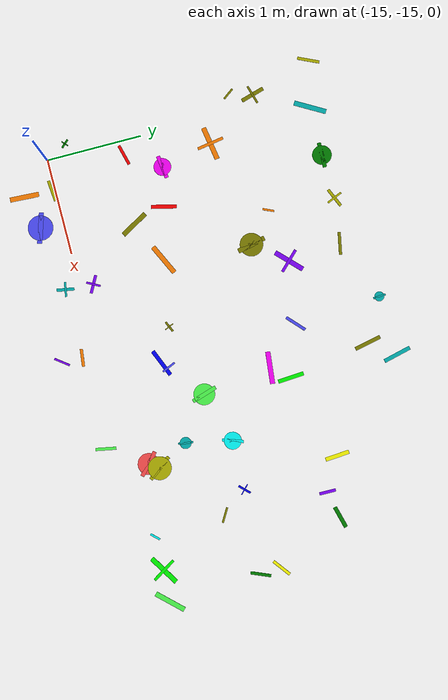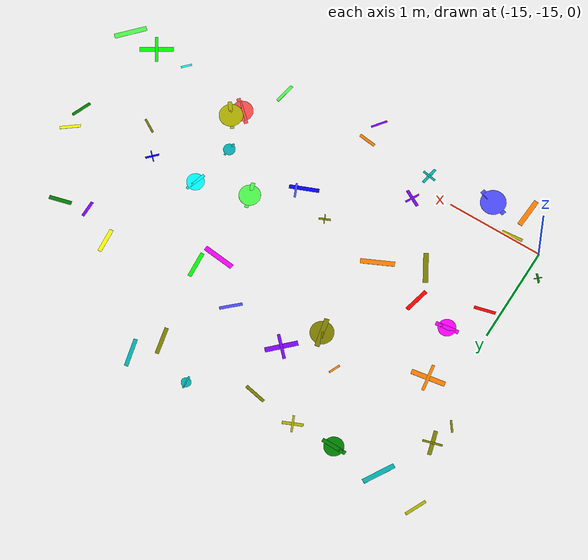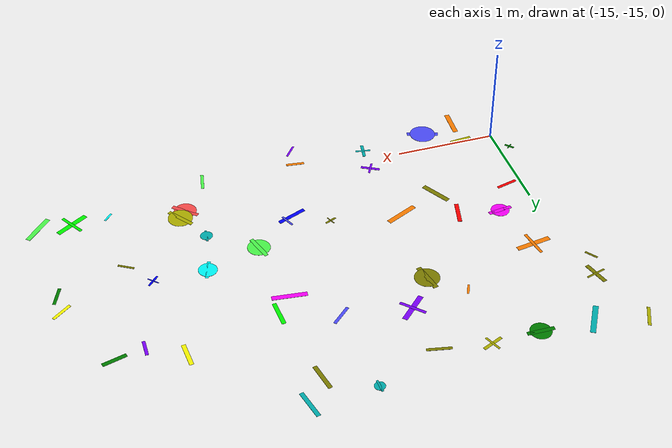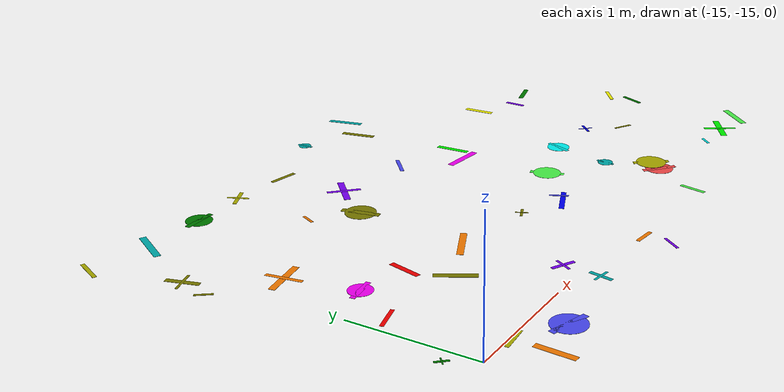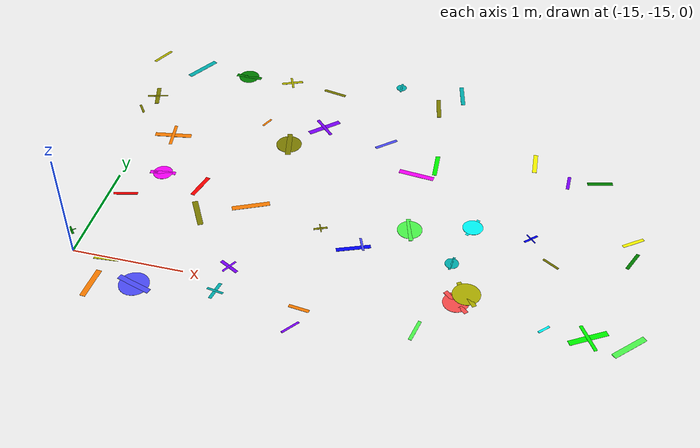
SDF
<sdf version="1.6">
 <world name="default">
  <model name="letter_J_12">
   <static>true</static>
   <pose>-14.68 -15.03 0.010 0 0 3.229</pose>
   <link name="link">
    <visual name="visual">
     <geometry><box><size>0.22 0.03 0.002</size></box></geometry>
     <material>
      <ambient>0.7 0.7 0.0 1</ambient>
      <diffuse>0.7 0.7 0.0 1</diffuse>
      <specular>0.1 0.1 0.1 1</specular>
     </material>
    </visual>
   </link>
  </model>
  <model name="letter_H_13">
   <static>true</static>
   <pose>-15.12 -14.78 0.005 0 0 2.308</pose>
   <link name="link">
    <visual name="visual">
     <geometry><box><size>0.10 0.02 0.002</size></box></geometry>
     <material>
      <ambient>0.0 0.5 0.0 1</ambient>
      <diffuse>0.0 0.5 0.0 1</diffuse>
      <specular>0.1 0.1 0.1 1</specular>
     </material>
    </visual>
    <visual name="visual2">
     <pose>0 0 0.001 0 0 1.57</pose>
     <geometry><box><size>0.08 0.01 0.001</size></box></geometry>
     <material><ambient>0.0 0.5 0.0 1</ambient><diffuse>0.0 0.5 0.0 1</diffuse></material>
    </visual>
   </link>
  </model>
  <model name="letter_N_14">
   <static>true</static>
   <pose>-14.69 -15.32 0.008 0 0 4.657</pose>
   <link name="link">
    <visual name="visual">
     <geometry><box><size>0.30 0.05 0.002</size></box></geometry>
     <material>
      <ambient>1.0 0.5 0.0 1</ambient>
      <diffuse>1.0 0.5 0.0 1</diffuse>
      <specular>0.1 0.1 0.1 1</specular>
     </material>
    </visual>
   </link>
  </model>
  <model name="letter_C_15">
   <static>true</static>
   <pose>-14.63 -13.87 0.008 0 0 3.273</pose>
   <link name="link">
    <visual name="visual">
     <geometry><box><size>0.24 0.04 0.002</size></box></geometry>
     <material>
      <ambient>1.0 0.0 1.0 1</ambient>
      <diffuse>1.0 0.0 1.0 1</diffuse>
      <specular>0.1 0.1 0.1 1</specular>
     </material>
    </visual>
    <visual name="visual2">
     <geometry><cylinder><radius>0.09</radius><length>0.002</length></cylinder></geometry>
     <material><ambient>1.0 0.0 1.0 1</ambient><diffuse>1.0 0.0 1.0 1</diffuse></material>
    </visual>
   </link>
  </model>
  <model name="letter_X_16">
   <static>true</static>
   <pose>-14.85 -14.22 0.008 0 0 3.390</pose>
   <link name="link">
    <visual name="visual">
     <geometry><box><size>0.22 0.03 0.002</size></box></geometry>
     <material>
      <ambient>1.0 0.0 0.0 1</ambient>
      <diffuse>1.0 0.0 0.0 1</diffuse>
      <specular>0.1 0.1 0.1 1</specular>
     </material>
    </visual>
   </link>
  </model>
  <model name="letter_I_17">
   <static>true</static>
   <pose>-15.12 -12.78 0.003 0 0 1.850</pose>
   <link name="link">
    <visual name="visual">
     <geometry><box><size>0.25 0.04 0.002</size></box></geometry>
     <material>
      <ambient>0.5 0.5 0.0 1</ambient>
      <diffuse>0.5 0.5 0.0 1</diffuse>
      <specular>0.1 0.1 0.1 1</specular>
     </material>
    </visual>
    <visual name="visual2">
     <pose>0 0 0.001 0 0 1.57</pose>
     <geometry><box><size>0.20 0.02 0.001</size></box></geometry>
     <material><ambient>0.5 0.5 0.0 1</ambient><diffuse>0.5 0.5 0.0 1</diffuse></material>
    </visual>
   </link>
  </model>
  <model name="letter_H_18">
   <static>true</static>
   <pose>-14.74 -13.33 0.005 0 0 0.158</pose>
   <link name="link">
    <visual name="visual">
     <geometry><box><size>0.35 0.05 0.002</size></box></geometry>
     <material>
      <ambient>1.0 0.5 0.0 1</ambient>
      <diffuse>1.0 0.5 0.0 1</diffuse>
      <specular>0.1 0.1 0.1 1</specular>
     </material>
    </visual>
    <visual name="visual2">
     <pose>0 0 0.001 0 0 1.57</pose>
     <geometry><box><size>0.28 0.03 0.001</size></box></geometry>
     <material><ambient>1.0 0.5 0.0 1</ambient><diffuse>1.0 0.5 0.0 1</diffuse></material>
    </visual>
   </link>
  </model>
  <model name="letter_V_19">
   <static>true</static>
   <pose>-15.19 -13.02 0.007 0 0 2.205</pose>
   <link name="link">
    <visual name="visual">
     <geometry><box><size>0.13 0.02 0.002</size></box></geometry>
     <material>
      <ambient>0.5 0.5 0.0 1</ambient>
      <diffuse>0.5 0.5 0.0 1</diffuse>
      <specular>0.1 0.1 0.1 1</specular>
     </material>
    </visual>
   </link>
  </model>
  <model name="letter_X_20">
   <static>true</static>
   <pose>-14.84 -12.24 0.009 0 0 1.045</pose>
   <link name="link">
    <visual name="visual">
     <geometry><box><size>0.34 0.05 0.002</size></box></geometry>
     <material>
      <ambient>0.0 0.7 0.7 1</ambient>
      <diffuse>0.0 0.7 0.7 1</diffuse>
      <specular>0.1 0.1 0.1 1</specular>
     </material>
    </visual>
   </link>
  </model>
  <model name="letter_W_22">
   <static>true</static>
   <pose>-15.32 -12.13 0.008 0 0 1.135</pose>
   <link name="link">
    <visual name="visual">
     <geometry><box><size>0.23 0.03 0.002</size></box></geometry>
     <material>
      <ambient>0.7 0.7 0.0 1</ambient>
      <diffuse>0.7 0.7 0.0 1</diffuse>
      <specular>0.1 0.1 0.1 1</specular>
     </material>
    </visual>
   </link>
  </model>
  <model name="letter_L_92">
   <static>true</static>
   <pose>-13.64 -14.86 0.009 0 0 5.786</pose>
   <link name="link">
    <visual name="visual">
     <geometry><box><size>0.19 0.03 0.002</size></box></geometry>
     <material>
      <ambient>0.5 0.0 1.0 1</ambient>
      <diffuse>0.5 0.0 1.0 1</diffuse>
      <specular>0.1 0.1 0.1 1</specular>
     </material>
    </visual>
    <visual name="visual2">
     <pose>0 0 0.001 0 0 1.57</pose>
     <geometry><box><size>0.15 0.02 0.001</size></box></geometry>
     <material><ambient>0.5 0.0 1.0 1</ambient><diffuse>0.5 0.0 1.0 1</diffuse></material>
    </visual>
   </link>
  </model>
  <model name="letter_G_93">
   <static>true</static>
   <pose>-14.34 -15.24 0.006 0 0 5.975</pose>
   <link name="link">
    <visual name="visual">
     <geometry><box><size>0.32 0.05 0.002</size></box></geometry>
     <material>
      <ambient>0.3 0.3 1.0 1</ambient>
      <diffuse>0.3 0.3 1.0 1</diffuse>
      <specular>0.1 0.1 0.1 1</specular>
     </material>
    </visual>
    <visual name="visual2">
     <geometry><cylinder><radius>0.13</radius><length>0.002</length></cylinder></geometry>
     <material><ambient>0.3 0.3 1.0 1</ambient><diffuse>0.3 0.3 1.0 1</diffuse></material>
    </visual>
   </link>
  </model>
  <model name="letter_A_94">
   <static>true</static>
   <pose>-13.66 -15.15 0.010 0 0 1.398</pose>
   <link name="link">
    <visual name="visual">
     <geometry><box><size>0.18 0.03 0.002</size></box></geometry>
     <material>
      <ambient>0.0 0.7 0.7 1</ambient>
      <diffuse>0.0 0.7 0.7 1</diffuse>
      <specular>0.1 0.1 0.1 1</specular>
     </material>
    </visual>
    <visual name="visual2">
     <pose>0 0 0.001 0 0 1.57</pose>
     <geometry><box><size>0.15 0.02 0.001</size></box></geometry>
     <material><ambient>0.0 0.7 0.7 1</ambient><diffuse>0.0 0.7 0.7 1</diffuse></material>
    </visual>
   </link>
  </model>
  <model name="letter_V_95">
   <static>true</static>
   <pose>-13.70 -14.10 0.006 0 0 3.581</pose>
   <link name="link">
    <visual name="visual">
     <geometry><box><size>0.34 0.05 0.002</size></box></geometry>
     <material>
      <ambient>1.0 0.5 0.0 1</ambient>
      <diffuse>1.0 0.5 0.0 1</diffuse>
      <specular>0.1 0.1 0.1 1</specular>
     </material>
    </visual>
   </link>
  </model>
  <model name="letter_S_96">
   <static>true</static>
   <pose>-14.13 -14.30 0.003 0 0 5.231</pose>
   <link name="link">
    <visual name="visual">
     <geometry><box><size>0.31 0.05 0.002</size></box></geometry>
     <material>
      <ambient>0.5 0.5 0.0 1</ambient>
      <diffuse>0.5 0.5 0.0 1</diffuse>
      <specular>0.1 0.1 0.1 1</specular>
     </material>
    </visual>
   </link>
  </model>
  <model name="letter_P_97">
   <static>true</static>
   <pose>-14.23 -13.96 0.004 0 0 4.477</pose>
   <link name="link">
    <visual name="visual">
     <geometry><box><size>0.26 0.04 0.002</size></box></geometry>
     <material>
      <ambient>1.0 0.0 0.0 1</ambient>
      <diffuse>1.0 0.0 0.0 1</diffuse>
      <specular>0.1 0.1 0.1 1</specular>
     </material>
    </visual>
   </link>
  </model>
  <model name="letter_G_98">
   <static>true</static>
   <pose>-13.62 -13.19 0.006 0 0 1.784</pose>
   <link name="link">
    <visual name="visual">
     <geometry><box><size>0.30 0.05 0.002</size></box></geometry>
     <material>
      <ambient>0.5 0.5 0.0 1</ambient>
      <diffuse>0.5 0.5 0.0 1</diffuse>
      <specular>0.1 0.1 0.1 1</specular>
     </material>
    </visual>
    <visual name="visual2">
     <geometry><cylinder><radius>0.12</radius><length>0.002</length></cylinder></geometry>
     <material><ambient>0.5 0.5 0.0 1</ambient><diffuse>0.5 0.5 0.0 1</diffuse></material>
    </visual>
   </link>
  </model>
  <model name="letter_J_99">
   <static>true</static>
   <pose>-13.92 -12.93 0.011 0 0 4.288</pose>
   <link name="link">
    <visual name="visual">
     <geometry><box><size>0.12 0.02 0.002</size></box></geometry>
     <material>
      <ambient>1.0 0.5 0.0 1</ambient>
      <diffuse>1.0 0.5 0.0 1</diffuse>
      <specular>0.1 0.1 0.1 1</specular>
     </material>
    </visual>
   </link>
  </model>
  <model name="letter_I_100">
   <static>true</static>
   <pose>-13.87 -12.24 0.005 0 0 3.550</pose>
   <link name="link">
    <visual name="visual">
     <geometry><box><size>0.21 0.03 0.002</size></box></geometry>
     <material>
      <ambient>0.7 0.7 0.0 1</ambient>
      <diffuse>0.7 0.7 0.0 1</diffuse>
      <specular>0.1 0.1 0.1 1</specular>
     </material>
    </visual>
    <visual name="visual2">
     <pose>0 0 0.001 0 0 1.57</pose>
     <geometry><box><size>0.17 0.02 0.001</size></box></geometry>
     <material><ambient>0.7 0.7 0.0 1</ambient><diffuse>0.7 0.7 0.0 1</diffuse></material>
    </visual>
   </link>
  </model>
  <model name="letter_Q_101">
   <static>true</static>
   <pose>-14.33 -12.25 0.007 0 0 6.266</pose>
   <link name="link">
    <visual name="visual">
     <geometry><box><size>0.26 0.04 0.002</size></box></geometry>
     <material>
      <ambient>0.0 0.5 0.0 1</ambient>
      <diffuse>0.0 0.5 0.0 1</diffuse>
      <specular>0.1 0.1 0.1 1</specular>
     </material>
    </visual>
    <visual name="visual2">
     <geometry><cylinder><radius>0.10</radius><length>0.002</length></cylinder></geometry>
     <material><ambient>0.0 0.5 0.0 1</ambient><diffuse>0.0 0.5 0.0 1</diffuse></material>
    </visual>
   </link>
  </model>
  <model name="letter_S_168">
   <static>true</static>
   <pose>-12.95 -15.37 0.006 0 0 0.918</pose>
   <link name="link">
    <visual name="visual">
     <geometry><box><size>0.17 0.02 0.002</size></box></geometry>
     <material>
      <ambient>0.5 0.0 1.0 1</ambient>
      <diffuse>0.5 0.0 1.0 1</diffuse>
      <specular>0.1 0.1 0.1 1</specular>
     </material>
    </visual>
   </link>
  </model>
  <model name="letter_J_169">
   <static>true</static>
   <pose>-12.94 -15.16 0.003 0 0 3.016</pose>
   <link name="link">
    <visual name="visual">
     <geometry><box><size>0.18 0.03 0.002</size></box></geometry>
     <material>
      <ambient>1.0 0.5 0.0 1</ambient>
      <diffuse>1.0 0.5 0.0 1</diffuse>
      <specular>0.1 0.1 0.1 1</specular>
     </material>
    </visual>
   </link>
  </model>
  <model name="letter_R_170">
   <static>true</static>
   <pose>-12.62 -14.33 0.012 0 0 1.975</pose>
   <link name="link">
    <visual name="visual">
     <geometry><box><size>0.15 0.02 0.002</size></box></geometry>
     <material>
      <ambient>0.3 0.3 1.0 1</ambient>
      <diffuse>0.3 0.3 1.0 1</diffuse>
      <specular>0.1 0.1 0.1 1</specular>
     </material>
    </visual>
   </link>
  </model>
  <model name="letter_I_171">
   <static>true</static>
   <pose>-13.02 -14.22 0.004 0 0 0.409</pose>
   <link name="link">
    <visual name="visual">
     <geometry><box><size>0.12 0.02 0.002</size></box></geometry>
     <material>
      <ambient>0.5 0.5 0.0 1</ambient>
      <diffuse>0.5 0.5 0.0 1</diffuse>
      <specular>0.1 0.1 0.1 1</specular>
     </material>
    </visual>
    <visual name="visual2">
     <pose>0 0 0.001 0 0 1.57</pose>
     <geometry><box><size>0.10 0.01 0.001</size></box></geometry>
     <material><ambient>0.5 0.5 0.0 1</ambient><diffuse>0.5 0.5 0.0 1</diffuse></material>
    </visual>
   </link>
  </model>
  <model name="letter_D_172">
   <static>true</static>
   <pose>-12.68 -14.39 0.008 0 0 0.388</pose>
   <link name="link">
    <visual name="visual">
     <geometry><box><size>0.30 0.04 0.002</size></box></geometry>
     <material>
      <ambient>0.0 0.0 1.0 1</ambient>
      <diffuse>0.0 0.0 1.0 1</diffuse>
      <specular>0.1 0.1 0.1 1</specular>
     </material>
    </visual>
   </link>
  </model>
  <model name="letter_H_173">
   <static>true</static>
   <pose>-13.36 -12.86 0.006 0 0 0.772</pose>
   <link name="link">
    <visual name="visual">
     <geometry><box><size>0.33 0.05 0.002</size></box></geometry>
     <material>
      <ambient>0.5 0.0 1.0 1</ambient>
      <diffuse>0.5 0.0 1.0 1</diffuse>
      <specular>0.1 0.1 0.1 1</specular>
     </material>
    </visual>
    <visual name="visual2">
     <pose>0 0 0.001 0 0 1.57</pose>
     <geometry><box><size>0.26 0.03 0.001</size></box></geometry>
     <material><ambient>0.5 0.0 1.0 1</ambient><diffuse>0.5 0.0 1.0 1</diffuse></material>
    </visual>
   </link>
  </model>
  <model name="letter_M_174">
   <static>true</static>
   <pose>-12.72 -12.96 0.007 0 0 0.742</pose>
   <link name="link">
    <visual name="visual">
     <geometry><box><size>0.23 0.03 0.002</size></box></geometry>
     <material>
      <ambient>0.3 0.3 1.0 1</ambient>
      <diffuse>0.3 0.3 1.0 1</diffuse>
      <specular>0.1 0.1 0.1 1</specular>
     </material>
    </visual>
   </link>
  </model>
  <model name="letter_P_175">
   <static>true</static>
   <pose>-13.40 -12.31 0.013 0 0 2.941</pose>
   <link name="link">
    <visual name="visual">
     <geometry><box><size>0.23 0.03 0.002</size></box></geometry>
     <material>
      <ambient>0.5 0.5 0.0 1</ambient>
      <diffuse>0.5 0.5 0.0 1</diffuse>
      <specular>0.1 0.1 0.1 1</specular>
     </material>
    </visual>
   </link>
  </model>
  <model name="letter_Q_176">
   <static>true</static>
   <pose>-12.77 -12.06 0.013 0 0 1.626</pose>
   <link name="link">
    <visual name="visual">
     <geometry><box><size>0.13 0.02 0.002</size></box></geometry>
     <material>
      <ambient>0.0 0.7 0.7 1</ambient>
      <diffuse>0.0 0.7 0.7 1</diffuse>
      <specular>0.1 0.1 0.1 1</specular>
     </material>
    </visual>
    <visual name="visual2">
     <geometry><cylinder><radius>0.05</radius><length>0.002</length></cylinder></geometry>
     <material><ambient>0.0 0.7 0.7 1</ambient><diffuse>0.0 0.7 0.7 1</diffuse></material>
    </visual>
   </link>
  </model>
  <model name="letter_V_244">
   <static>true</static>
   <pose>-11.98 -15.16 0.008 0 0 4.519</pose>
   <link name="link">
    <visual name="visual">
     <geometry><box><size>0.21 0.03 0.002</size></box></geometry>
     <material>
      <ambient>0.3 1.0 0.3 1</ambient>
      <diffuse>0.3 1.0 0.3 1</diffuse>
      <specular>0.1 0.1 0.1 1</specular>
     </material>
    </visual>
   </link>
  </model>
  <model name="letter_G_245">
   <static>true</static>
   <pose>-11.65 -14.68 0.011 0 0 2.213</pose>
   <link name="link">
    <visual name="visual">
     <geometry><box><size>0.29 0.04 0.002</size></box></geometry>
     <material>
      <ambient>0.7 0.7 0.0 1</ambient>
      <diffuse>0.7 0.7 0.0 1</diffuse>
      <specular>0.1 0.1 0.1 1</specular>
     </material>
    </visual>
    <visual name="visual2">
     <geometry><cylinder><radius>0.12</radius><length>0.002</length></cylinder></geometry>
     <material><ambient>0.7 0.7 0.0 1</ambient><diffuse>0.7 0.7 0.0 1</diffuse></material>
    </visual>
   </link>
  </model>
  <model name="letter_Q_246">
   <static>true</static>
   <pose>-11.72 -14.78 0.003 0 0 2.409</pose>
   <link name="link">
    <visual name="visual">
     <geometry><box><size>0.28 0.04 0.002</size></box></geometry>
     <material>
      <ambient>1.0 0.3 0.3 1</ambient>
      <diffuse>1.0 0.3 0.3 1</diffuse>
      <specular>0.1 0.1 0.1 1</specular>
     </material>
    </visual>
    <visual name="visual2">
     <geometry><cylinder><radius>0.11</radius><length>0.002</length></cylinder></geometry>
     <material><ambient>1.0 0.3 0.3 1</ambient><diffuse>1.0 0.3 0.3 1</diffuse></material>
    </visual>
   </link>
  </model>
  <model name="letter_O_247">
   <static>true</static>
   <pose>-12.26 -14.05 0.007 0 0 1.871</pose>
   <link name="link">
    <visual name="visual">
     <geometry><box><size>0.27 0.04 0.002</size></box></geometry>
     <material>
      <ambient>0.3 1.0 0.3 1</ambient>
      <diffuse>0.3 1.0 0.3 1</diffuse>
      <specular>0.1 0.1 0.1 1</specular>
     </material>
    </visual>
    <visual name="visual2">
     <geometry><cylinder><radius>0.11</radius><length>0.002</length></cylinder></geometry>
     <material><ambient>0.3 1.0 0.3 1</ambient><diffuse>0.3 1.0 0.3 1</diffuse></material>
    </visual>
   </link>
  </model>
  <model name="letter_C_248">
   <static>true</static>
   <pose>-11.83 -14.36 0.007 0 0 1.444</pose>
   <link name="link">
    <visual name="visual">
     <geometry><box><size>0.15 0.02 0.002</size></box></geometry>
     <material>
      <ambient>0.0 0.7 0.7 1</ambient>
      <diffuse>0.0 0.7 0.7 1</diffuse>
      <specular>0.1 0.1 0.1 1</specular>
     </material>
    </visual>
    <visual name="visual2">
     <geometry><cylinder><radius>0.06</radius><length>0.002</length></cylinder></geometry>
     <material><ambient>0.0 0.7 0.7 1</ambient><diffuse>0.0 0.7 0.7 1</diffuse></material>
    </visual>
   </link>
  </model>
  <model name="letter_O_249">
   <static>true</static>
   <pose>-11.73 -13.89 0.010 0 0 1.238</pose>
   <link name="link">
    <visual name="visual">
     <geometry><box><size>0.22 0.03 0.002</size></box></geometry>
     <material>
      <ambient>0.0 1.0 1.0 1</ambient>
      <diffuse>0.0 1.0 1.0 1</diffuse>
      <specular>0.1 0.1 0.1 1</specular>
     </material>
    </visual>
    <visual name="visual2">
     <geometry><cylinder><radius>0.09</radius><length>0.002</length></cylinder></geometry>
     <material><ambient>0.0 1.0 1.0 1</ambient><diffuse>0.0 1.0 1.0 1</diffuse></material>
    </visual>
   </link>
  </model>
  <model name="letter_V_250">
   <static>true</static>
   <pose>-12.35 -13.33 0.011 0 0 6.174</pose>
   <link name="link">
    <visual name="visual">
     <geometry><box><size>0.33 0.05 0.002</size></box></geometry>
     <material>
      <ambient>1.0 0.0 1.0 1</ambient>
      <diffuse>1.0 0.0 1.0 1</diffuse>
      <specular>0.1 0.1 0.1 1</specular>
     </material>
    </visual>
   </link>
  </model>
  <model name="letter_J_251">
   <static>true</static>
   <pose>-12.20 -13.15 0.004 0 0 4.776</pose>
   <link name="link">
    <visual name="visual">
     <geometry><box><size>0.27 0.04 0.002</size></box></geometry>
     <material>
      <ambient>0.0 1.0 0.0 1</ambient>
      <diffuse>0.0 1.0 0.0 1</diffuse>
      <specular>0.1 0.1 0.1 1</specular>
     </material>
    </visual>
   </link>
  </model>
  <model name="letter_S_252">
   <static>true</static>
   <pose>-12.15 -12.04 0.012 0 0 1.804</pose>
   <link name="link">
    <visual name="visual">
     <geometry><box><size>0.29 0.04 0.002</size></box></geometry>
     <material>
      <ambient>0.0 0.7 0.7 1</ambient>
      <diffuse>0.0 0.7 0.7 1</diffuse>
      <specular>0.1 0.1 0.1 1</specular>
     </material>
    </visual>
   </link>
  </model>
  <model name="letter_S_253">
   <static>true</static>
   <pose>-12.34 -12.30 0.012 0 0 1.778</pose>
   <link name="link">
    <visual name="visual">
     <geometry><box><size>0.28 0.04 0.002</size></box></geometry>
     <material>
      <ambient>0.5 0.5 0.0 1</ambient>
      <diffuse>0.5 0.5 0.0 1</diffuse>
      <specular>0.1 0.1 0.1 1</specular>
     </material>
    </visual>
   </link>
  </model>
  <model name="letter_P_318">
   <static>true</static>
   <pose>-10.99 -14.90 0.012 0 0 0.812</pose>
   <link name="link">
    <visual name="visual">
     <geometry><box><size>0.11 0.02 0.002</size></box></geometry>
     <material>
      <ambient>0.0 1.0 1.0 1</ambient>
      <diffuse>0.0 1.0 1.0 1</diffuse>
      <specular>0.1 0.1 0.1 1</specular>
     </material>
    </visual>
   </link>
  </model>
  <model name="letter_I_319">
   <static>true</static>
   <pose>-10.64 -14.90 0.007 0 0 3.695</pose>
   <link name="link">
    <visual name="visual">
     <geometry><box><size>0.34 0.05 0.002</size></box></geometry>
     <material>
      <ambient>0.0 1.0 0.0 1</ambient>
      <diffuse>0.0 1.0 0.0 1</diffuse>
      <specular>0.1 0.1 0.1 1</specular>
     </material>
    </visual>
    <visual name="visual2">
     <pose>0 0 0.001 0 0 1.57</pose>
     <geometry><box><size>0.27 0.03 0.001</size></box></geometry>
     <material><ambient>0.0 1.0 0.0 1</ambient><diffuse>0.0 1.0 0.0 1</diffuse></material>
    </visual>
   </link>
  </model>
  <model name="letter_D_320">
   <static>true</static>
   <pose>-11.02 -14.16 0.007 0 0 2.601</pose>
   <link name="link">
    <visual name="visual">
     <geometry><box><size>0.16 0.02 0.002</size></box></geometry>
     <material>
      <ambient>0.5 0.5 0.0 1</ambient>
      <diffuse>0.5 0.5 0.0 1</diffuse>
      <specular>0.1 0.1 0.1 1</specular>
     </material>
    </visual>
   </link>
  </model>
  <model name="letter_T_321">
   <static>true</static>
   <pose>-11.22 -13.90 0.005 0 0 0.794</pose>
   <link name="link">
    <visual name="visual">
     <geometry><box><size>0.14 0.02 0.002</size></box></geometry>
     <material>
      <ambient>0.0 0.0 1.0 1</ambient>
      <diffuse>0.0 0.0 1.0 1</diffuse>
      <specular>0.1 0.1 0.1 1</specular>
     </material>
    </visual>
    <visual name="visual2">
     <pose>0 0 0.001 0 0 1.57</pose>
     <geometry><box><size>0.12 0.01 0.001</size></box></geometry>
     <material><ambient>0.0 0.0 1.0 1</ambient><diffuse>0.0 0.0 1.0 1</diffuse></material>
    </visual>
   </link>
  </model>
  <model name="letter_V_322">
   <static>true</static>
   <pose>-10.70 -13.03 0.005 0 0 0.253</pose>
   <link name="link">
    <visual name="visual">
     <geometry><box><size>0.23 0.04 0.002</size></box></geometry>
     <material>
      <ambient>0.0 0.5 0.0 1</ambient>
      <diffuse>0.0 0.5 0.0 1</diffuse>
      <specular>0.1 0.1 0.1 1</specular>
     </material>
    </visual>
   </link>
  </model>
  <model name="letter_X_323">
   <static>true</static>
   <pose>-10.98 -13.09 0.005 0 0 1.558</pose>
   <link name="link">
    <visual name="visual">
     <geometry><box><size>0.17 0.03 0.002</size></box></geometry>
     <material>
      <ambient>0.5 0.0 1.0 1</ambient>
      <diffuse>0.5 0.0 1.0 1</diffuse>
      <specular>0.1 0.1 0.1 1</specular>
     </material>
    </visual>
   </link>
  </model>
  <model name="letter_R_324">
   <static>true</static>
   <pose>-11.31 -12.90 0.009 0 0 4.782</pose>
   <link name="link">
    <visual name="visual">
     <geometry><box><size>0.25 0.04 0.002</size></box></geometry>
     <material>
      <ambient>1.0 1.0 0.0 1</ambient>
      <diffuse>1.0 1.0 0.0 1</diffuse>
      <specular>0.1 0.1 0.1 1</specular>
     </material>
    </visual>
   </link>
  </model>
  <model name="letter_D_397">
   <static>true</static>
   <pose>-10.32 -14.92 0.013 0 0 3.955</pose>
   <link name="link">
    <visual name="visual">
     <geometry><box><size>0.33 0.05 0.002</size></box></geometry>
     <material>
      <ambient>0.3 1.0 0.3 1</ambient>
      <diffuse>0.3 1.0 0.3 1</diffuse>
      <specular>0.1 0.1 0.1 1</specular>
     </material>
    </visual>
   </link>
  </model>
  <model name="letter_V_400">
   <static>true</static>
   <pose>-10.35 -13.96 0.006 0 0 4.314</pose>
   <link name="link">
    <visual name="visual">
     <geometry><box><size>0.21 0.03 0.002</size></box></geometry>
     <material>
      <ambient>0.0 0.5 0.0 1</ambient>
      <diffuse>0.0 0.5 0.0 1</diffuse>
      <specular>0.1 0.1 0.1 1</specular>
     </material>
    </visual>
   </link>
  </model>
  <model name="letter_U_401">
   <static>true</static>
   <pose>-10.36 -13.74 0.012 0 0 0.647</pose>
   <link name="link">
    <visual name="visual">
     <geometry><box><size>0.21 0.03 0.002</size></box></geometry>
     <material>
      <ambient>1.0 1.0 0.0 1</ambient>
      <diffuse>1.0 1.0 0.0 1</diffuse>
      <specular>0.1 0.1 0.1 1</specular>
     </material>
    </visual>
   </link>
  </model>
 </world>
</sdf>
